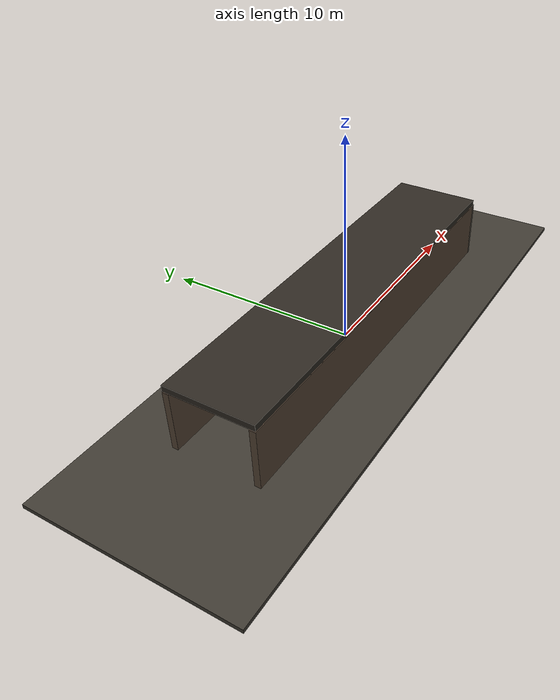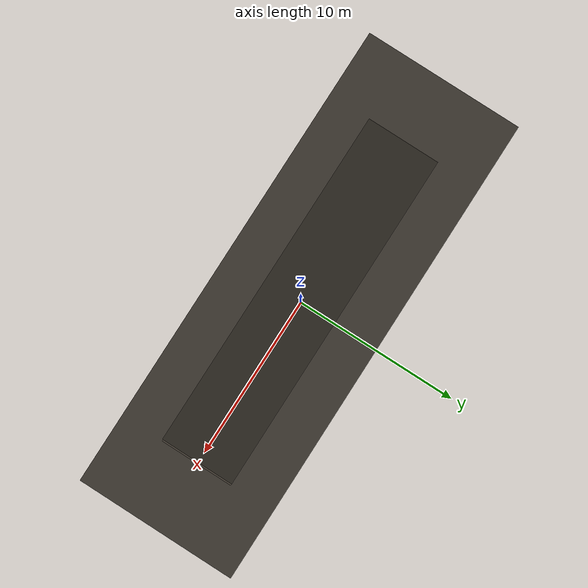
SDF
<?xml version="1.0" ?>
<sdf version="1.9">

  <world name="default">
  <spherical_coordinates>
  <surface_model>EARTH_WGS84</surface_model>
  <world_frame_orientation>ENU</world_frame_orientation>
  <latitude_deg>22.5726</latitude_deg>
  <longitude_deg>88.3639</longitude_deg>
  <elevation>0</elevation>
  <heading_deg>0</heading_deg>
</spherical_coordinates>
    <!-- PHYSICS                   -->

    <physics name="mine_physics"
             type="ode">
      <max_step_size>0.001</max_step_size>
      <real_time_factor>1</real_time_factor>
      <real_time_update_rate>1000</real_time_update_rate>
    </physics>

    <!-- GAZEBO / PX4 SYSTEMS      -->

    <plugin filename="libgz-sim-physics-system.so"
            name="gz::sim::systems::Physics"/>

    <plugin filename="libgz-sim-user-commands-system.so"
            name="gz::sim::systems::UserCommands"/>

    <plugin filename="libgz-sim-scene-broadcaster-system.so"
            name="gz::sim::systems::SceneBroadcaster"/>

    <!-- PX4 sensor systems -->

    <plugin filename="gz-sim-imu-system"
            name="gz::sim::systems::Imu"/>

    <plugin filename="gz-sim-air-pressure-system"
            name="gz::sim::systems::AirPressure"/>

    <plugin filename="gz-sim-navsat-system"
            name="gz::sim::systems::NavSat"/>

    <plugin filename="gz-sim-magnetometer-system"
            name="gz::sim::systems::Magnetometer"/>

    <!-- Gazebo rendering / GPU sensor system -->

    <plugin filename="libgz-sim-sensors-system.so"
            name="gz::sim::systems::Sensors">
      <render_engine>ogre2</render_engine>
    </plugin>

    <!-- LIGHT                     -->
    <light name="mine_light"
           type="point">
      <pose>0 0 3 0 0 0</pose>
      <diffuse>1 1 1 1</diffuse>
      <specular>0.2 0.2 0.2 1</specular>
      <attenuation>
        <range>30</range>
        <linear>0.01</linear>
        <constant>0.5</constant>
        <quadratic>0.01</quadratic>
      </attenuation>
      <cast_shadows>true</cast_shadows>
    </light>

    <!-- MINE FLOOR                -->

    <model name="mine_floor">
      <static>true</static>

      <link name="link">

        <collision name="collision">
          <geometry>
            <box>
              <size>30 10 0.2</size>
            </box>
          </geometry>
        </collision>

        <visual name="visual">
          <geometry>
            <box>
              <size>30 10 0.2</size>
            </box>
          </geometry>

          <material>
            <ambient>0.18 0.16 0.14 1</ambient>
            <diffuse>0.25 0.23 0.20 1</diffuse>
            <specular>0.05 0.05 0.05 1</specular>
          </material>
        </visual>

      </link>
    </model>

    <!-- MAIN TUNNEL LEFT WALL     -->

    <model name="main_left_wall">
      <static>true</static>

      <pose>0 2 1.5 0 0 0</pose>

      <link name="link">

        <collision name="collision">
          <geometry>
            <box>
              <size>20 0.3 3</size>
            </box>
          </geometry>
        </collision>

        <visual name="visual">
          <geometry>
            <box>
              <size>20 0.3 3</size>
            </box>
          </geometry>

          <material>
            <ambient>0.25 0.20 0.16 1</ambient>
            <diffuse>0.35 0.28 0.22 1</diffuse>
          </material>
        </visual>

      </link>
    </model>

    <!-- MAIN TUNNEL RIGHT WALL    -->

    <model name="main_right_wall">
      <static>true</static>

      <pose>0 -2 1.5 0 0 0</pose>

      <link name="link">

        <collision name="collision">
          <geometry>
            <box>
              <size>20 0.3 3</size>
            </box>
          </geometry>
        </collision>

        <visual name="visual">
          <geometry>
            <box>
              <size>20 0.3 3</size>
            </box>
          </geometry>

          <material>
            <ambient>0.25 0.20 0.16 1</ambient>
            <diffuse>0.35 0.28 0.22 1</diffuse>
          </material>
        </visual>

      </link>
    </model>

    <!-- TUNNEL END                -->

    <model name="main_tunnel_end">
      <static>true</static>

      <pose>10 0 1.5 0 0 0</pose>

      <link name="link">

        <collision name="collision">
          <geometry>
            <box>
              <size>0.3 4.3 3</size>
            </box>
          </geometry>
        </collision>

        <visual name="visual">
          <geometry>
            <box>
              <size>0.3 4.3 3</size>
            </box>
          </geometry>

          <material>
            <ambient>0.20 0.18 0.16 1</ambient>
            <diffuse>0.30 0.27 0.23 1</diffuse>
          </material>
        </visual>

      </link>
    </model>

    <!-- ROOF                      -->

    <model name="mine_roof">
      <static>true</static>

      <pose>0 0 3.2 0 0 0</pose>

      <link name="link">

        <collision name="collision">
          <geometry>
            <box>
              <size>20 4.3 0.3</size>
            </box>
          </geometry>
        </collision>

        <visual name="visual">
          <geometry>
            <box>
              <size>20 4.3 0.3</size>
            </box>
          </geometry>

          <material>
            <ambient>0.12 0.10 0.08 1</ambient>
            <diffuse>0.18 0.16 0.13 1</diffuse>
          </material>
        </visual>

      </link>
    </model>
        <include>
      <uri>model://ellios_rover</uri>
      <name>ellios_rover</name>
      <pose>2 0 0.35 0 0 0</pose>
    </include>
  </world>

</sdf>

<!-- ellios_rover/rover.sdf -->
<sdf version="1.9">

  <model name="ellios_rover">

    <!-- Rover starts inside the mine -->
    <pose>2.0 0.0 0.32 0 0 0</pose>

    <!-- =========================================================
         MAIN CHASSIS
         ========================================================= -->

    <link name="base_link">

      <pose>0 0 0 0 0 0</pose>

      <inertial>
        <mass>30.0</mass>

        <inertia>
          <!-- 30 kg rectangular body:
               length = 1.40 m
               width  = 0.90 m
               height = 0.32 m -->
          <ixx>2.2810</ixx>
          <iyy>5.1565</iyy>
          <izz>6.9250</izz>
          <ixy>0.0</ixy>
          <ixz>0.0</ixz>
          <iyz>0.0</iyz>
        </inertia>
      </inertial>

      <!-- Chassis visual -->
      <visual name="chassis_visual">
        <pose>0 0 0 0 0 0</pose>

        <geometry>
          <box>
            <size>1.40 0.90 0.32</size>
          </box>
        </geometry>

        <material>
          <ambient>0.15 0.15 0.15 1</ambient>
          <diffuse>0.25 0.25 0.25 1</diffuse>
          <specular>0.3 0.3 0.3 1</specular>
        </material>
      </visual>

      <!-- Chassis collision -->
      <collision name="chassis_collision">
        <pose>0 0 0 0 0 0</pose>

        <geometry>
          <box>
            <size>1.40 0.90 0.32</size>
          </box>
        </geometry>
      </collision>

      <visual name="lidar_visual">
        <pose>0 0 0.30 0 0 0</pose>

        <geometry>
          <cylinder>
            <radius>0.10</radius>
            <length>0.08</length>
          </cylinder>
        </geometry>

        <material>
          <ambient>0.05 0.05 0.05 1</ambient>
          <diffuse>0.10 0.10 0.10 1</diffuse>
          <specular>0.30 0.30 0.30 1</specular>
        </material>
      </visual>

      <!-- =====================================================
           GPU 2D LIDAR SENSOR
           ===================================================== -->

      <sensor name="lidar_2d" type="gpu_lidar">

        <pose>0 0 0.30 0 0 0</pose>

        <always_on>true</always_on>

        <update_rate>10</update_rate>

        <visualize>true</visualize>

        <topic>/rover/scan</topic>

        <lidar>

          <scan>

            <horizontal>

              <samples>720</samples>

              <resolution>1</resolution>

              <min_angle>-3.14159265</min_angle>

              <max_angle>3.14159265</max_angle>

            </horizontal>

          </scan>

          <range>

            <min>0.12</min>

            <max>20.0</max>

            <resolution>0.01</resolution>

          </range>

        </lidar>

      </sensor>
    </link>

    <link name="front_left_wheel">

      <pose>0.48 0.51 0 1.57079632679 0 0</pose>

      <inertial>
        <mass>2.5</mass>

        <inertia>
          <ixx>0.06387</ixx>
          <iyy>0.06050</iyy>
          <izz>0.06387</izz>
          <ixy>0.0</ixy>
          <ixz>0.0</ixz>
          <iyz>0.0</iyz>
        </inertia>
      </inertial>

      <visual name="front_left_wheel_visual">

        <!-- Cylinder axis is Z by default -->
        <geometry>
          <cylinder>
            <radius>0.22</radius>
            <length>0.16</length>
          </cylinder>
        </geometry>

        <material>
          <ambient>0.03 0.03 0.03 1</ambient>
          <diffuse>0.05 0.05 0.05 1</diffuse>
          <specular>0.2 0.2 0.2 1</specular>
        </material>

      </visual>

      <collision name="front_left_wheel_collision">

        <geometry>
          <cylinder>
            <radius>0.22</radius>
            <length>0.16</length>
          </cylinder>
        </geometry>

        <surface>
          <friction>
            <ode>
              <mu>1.5</mu>
              <mu2>1.5</mu2>
            </ode>
          </friction>
        </surface>

      </collision>

    </link>

    <!-- =========================================================
         REAR LEFT WHEEL
         ========================================================= -->

    <link name="rear_left_wheel">

      <pose>-0.48 0.51 0 1.57079632679 0 0</pose>

      <inertial>
        <mass>2.5</mass>

        <inertia>
          <ixx>0.06387</ixx>
          <iyy>0.06050</iyy>
          <izz>0.06387</izz>
          <ixy>0.0</ixy>
          <ixz>0.0</ixz>
          <iyz>0.0</iyz>
        </inertia>
      </inertial>

      <visual name="rear_left_wheel_visual">

        <geometry>
          <cylinder>
            <radius>0.22</radius>
            <length>0.16</length>
          </cylinder>
        </geometry>

        <material>
          <ambient>0.03 0.03 0.03 1</ambient>
          <diffuse>0.05 0.05 0.05 1</diffuse>
          <specular>0.2 0.2 0.2 1</specular>
        </material>

      </visual>

      <collision name="rear_left_wheel_collision">

        <geometry>
          <cylinder>
            <radius>0.22</radius>
            <length>0.16</length>
          </cylinder>
        </geometry>

        <surface>
          <friction>
            <ode>
              <mu>1.5</mu>
              <mu2>1.5</mu2>
            </ode>
          </friction>
        </surface>

      </collision>

    </link>

    <!-- =========================================================
         FRONT RIGHT WHEEL
         ========================================================= -->

    <link name="front_right_wheel">

      <pose>0.48 -0.51 0 1.57079632679 0 0</pose>

      <inertial>
        <mass>2.5</mass>

        <inertia>
          <ixx>0.06387</ixx>
          <iyy>0.06050</iyy>
          <izz>0.06387</izz>
          <ixy>0.0</ixy>
          <ixz>0.0</ixz>
          <iyz>0.0</iyz>
        </inertia>
      </inertial>

      <visual name="front_right_wheel_visual">

        <geometry>
          <cylinder>
            <radius>0.22</radius>
            <length>0.16</length>
          </cylinder>
        </geometry>

        <material>
          <ambient>0.03 0.03 0.03 1</ambient>
          <diffuse>0.05 0.05 0.05 1</diffuse>
          <specular>0.2 0.2 0.2 1</specular>
        </material>

      </visual>

      <collision name="front_right_wheel_collision">

        <geometry>
          <cylinder>
            <radius>0.22</radius>
            <length>0.16</length>
          </cylinder>
        </geometry>

        <surface>
          <friction>
            <ode>
              <mu>1.5</mu>
              <mu2>1.5</mu2>
            </ode>
          </friction>
        </surface>

      </collision>

    </link>

    <!-- =========================================================
         REAR RIGHT WHEEL
         ========================================================= -->

    <link name="rear_right_wheel">

      <pose>-0.48 -0.51 0 1.57079632679 0 0</pose>

      <inertial>
        <mass>2.5</mass>

        <inertia>
          <ixx>0.06387</ixx>
          <iyy>0.06050</iyy>
          <izz>0.06387</izz>
          <ixy>0.0</ixy>
          <ixz>0.0</ixz>
          <iyz>0.0</iyz>
        </inertia>
      </inertial>

      <visual name="rear_right_wheel_visual">

        <geometry>
          <cylinder>
            <radius>0.22</radius>
            <length>0.16</length>
          </cylinder>
        </geometry>

        <material>
          <ambient>0.03 0.03 0.03 1</ambient>
          <diffuse>0.05 0.05 0.05 1</diffuse>
          <specular>0.2 0.2 0.2 1</specular>
        </material>

      </visual>

      <collision name="rear_right_wheel_collision">

        <geometry>
          <cylinder>
            <radius>0.22</radius>
            <length>0.16</length>
          </cylinder>
        </geometry>

        <surface>
          <friction>
            <ode>
              <mu>1.5</mu>
              <mu2>1.5</mu2>
            </ode>
          </friction>
        </surface>

      </collision>

    </link>

    <!-- =========================================================
         FRONT LEFT WHEEL JOINT
         ========================================================= -->

    <joint name="front_left_wheel_joint"
           type="revolute">

      <parent>base_link</parent>
      <child>front_left_wheel</child>

      <axis>
        <xyz expressed_in="__model__">0 1 0</xyz>

        <dynamics>
          <damping>0.15</damping>
          <friction>0.02</friction>
        </dynamics>

        <limit>
          <lower>-1e16</lower>
          <upper>1e16</upper>
          <effort>-1</effort>
          <velocity>-1</velocity>
        </limit>

      </axis>

    </joint>

    <!-- =========================================================
         REAR LEFT WHEEL JOINT
         ========================================================= -->

    <joint name="rear_left_wheel_joint"
           type="revolute">

      <parent>base_link</parent>
      <child>rear_left_wheel</child>

      <axis>
        <xyz expressed_in="__model__">0 1 0</xyz>

        <dynamics>
          <damping>0.15</damping>
          <friction>0.02</friction>
        </dynamics>

        <limit>
          <lower>-1e16</lower>
          <upper>1e16</upper>
          <effort>-1</effort>
          <velocity>-1</velocity>
        </limit>

      </axis>

    </joint>

    <!-- =========================================================
         FRONT RIGHT WHEEL JOINT
         ========================================================= -->

    <joint name="front_right_wheel_joint"
           type="revolute">

      <parent>base_link</parent>
      <child>front_right_wheel</child>

      <axis>
        <xyz expressed_in="__model__">0 1 0</xyz>

        <dynamics>
          <damping>0.15</damping>
          <friction>0.02</friction>
        </dynamics>

        <limit>
          <lower>-1e16</lower>
          <upper>1e16</upper>
          <effort>-1</effort>
          <velocity>-1</velocity>
        </limit>

      </axis>

    </joint>

    <!-- =========================================================
         REAR RIGHT WHEEL JOINT
         ========================================================= -->

    <joint name="rear_right_wheel_joint"
           type="revolute">

      <parent>base_link</parent>
      <child>rear_right_wheel</child>

      <axis>
        <xyz expressed_in="__model__">0 1 0</xyz>

        <dynamics>
          <damping>0.15</damping>
          <friction>0.02</friction>
        </dynamics>

        <limit>
          <lower>-1e16</lower>
          <upper>1e16</upper>
          <effort>-1</effort>
          <velocity>-1</velocity>
        </limit>

      </axis>

    </joint>

    <!-- =========================================================
         4-WHEEL SKID-STEER DIFFERENTIAL DRIVE
         ========================================================= -->

    <plugin
      filename="libgz-sim-diff-drive-system.so"
      name="gz::sim::systems::DiffDrive">

      <!-- LEFT SIDE -->
      <left_joint>front_left_wheel_joint</left_joint>
      <left_joint>rear_left_wheel_joint</left_joint>

      <!-- RIGHT SIDE -->
      <right_joint>front_right_wheel_joint</right_joint>
      <right_joint>rear_right_wheel_joint</right_joint>

      <!-- Wheel geometry -->
      <wheel_separation>1.02</wheel_separation>
      <wheel_radius>0.22</wheel_radius>

      <!-- ROS/Gazebo command interface -->
      <topic>/rover/cmd_vel</topic>

      <!-- Odometry -->
      <odom_topic>/rover/odom</odom_topic>
      <tf_topic>/tf</tf_topic>

      <frame_id>odom</frame_id>
      <child_frame_id>base_link</child_frame_id>

      <odom_publish_frequency>30</odom_publish_frequency>

      <max_linear_acceleration>1.0</max_linear_acceleration>
      <max_linear_deceleration>1.0</max_linear_deceleration>

      <max_angular_acceleration>1.5</max_angular_acceleration>
      <max_angular_deceleration>1.5</max_angular_deceleration>

    </plugin>

  </model>

</sdf>
